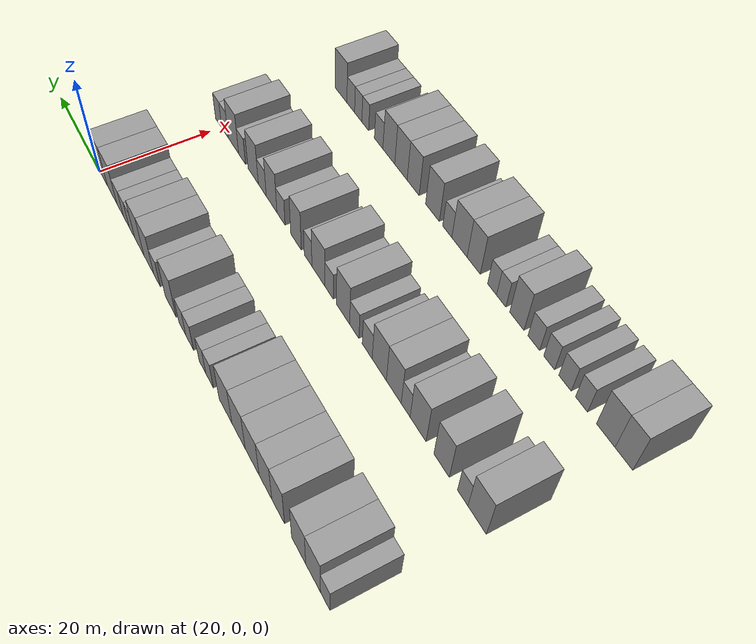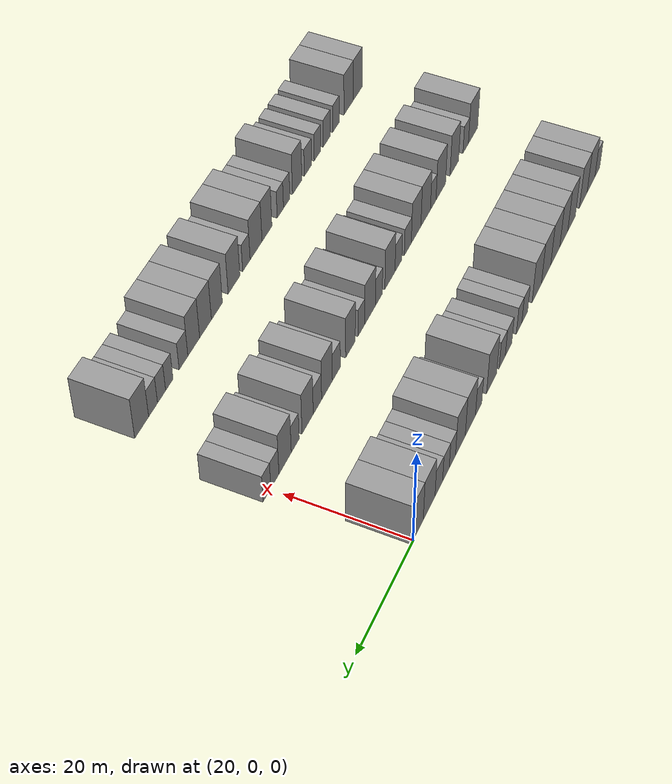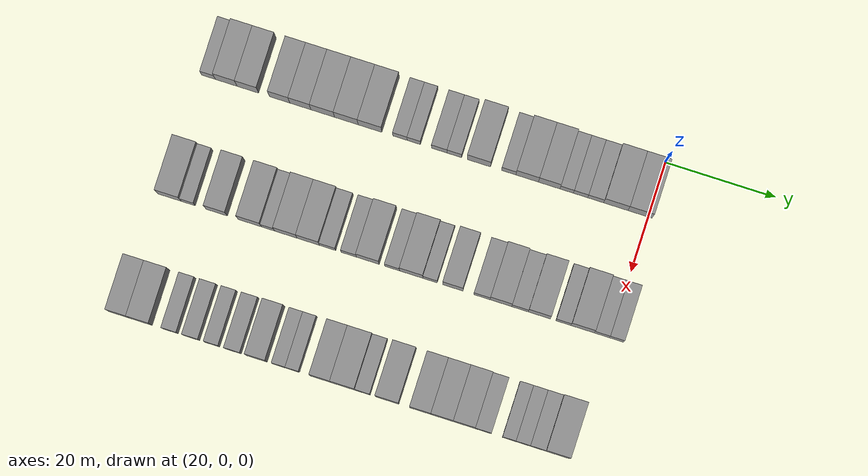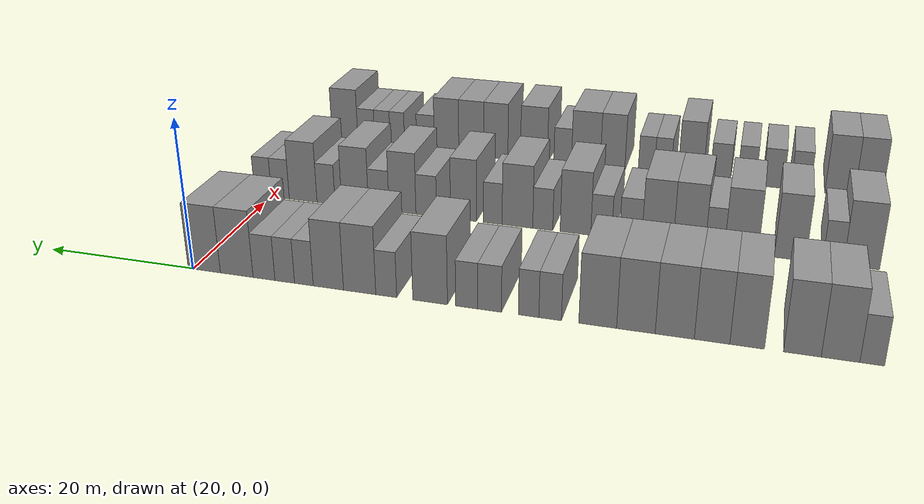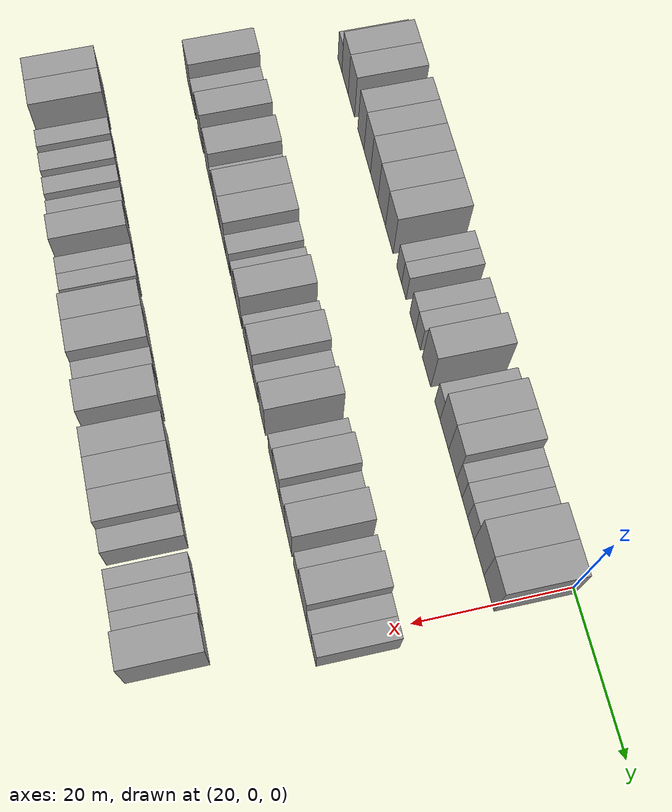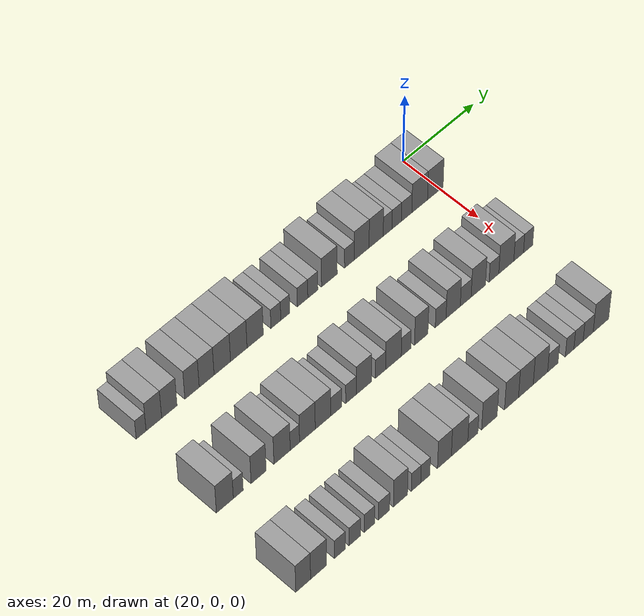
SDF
<sdf version="1.6">
 <world name="default">
  <model name="building_44">
   <static>1</static>
   <pose>25.0000 -80.0798 0 0.000000 0.000000 0.000000</pose>
   <link name="link">
    <pose>0 0 3.00 0 0 0</pose>
    <collision name="collision"><geometry><box><size>10.0000 2.5071 6.0000</size></box></geometry></collision>
    <visual name="visual">
     <cast_shadows>0</cast_shadows>
     <geometry><box><size>10.0000 2.5071 6.0000</size></box></geometry>
     <material>
      <script>
       <uri>model://grey_wall/materials/scripts</uri>
       <uri>model://grey_wall/materials/textures</uri>
       <name>vrc/grey_wall</name>
      </script>
     </material>
    </visual>
   </link>
  </model>
  <model name="building_45">
   <static>1</static>
   <pose>25.0000 -76.8473 0 0.000000 0.000000 0.000000</pose>
   <link name="link">
    <pose>0 0 4.50 0 0 0</pose>
    <collision name="collision"><geometry><box><size>10.0000 3.9578 9.0000</size></box></geometry></collision>
    <visual name="visual">
     <cast_shadows>0</cast_shadows>
     <geometry><box><size>10.0000 3.9578 9.0000</size></box></geometry>
     <material>
      <script>
       <uri>model://grey_wall/materials/scripts</uri>
       <uri>model://grey_wall/materials/textures</uri>
       <name>vrc/grey_wall</name>
      </script>
     </material>
    </visual>
   </link>
  </model>
  <model name="building_46">
   <static>1</static>
   <pose>25.0000 -72.9065 0 0.000000 0.000000 0.000000</pose>
   <link name="link">
    <pose>0 0 4.50 0 0 0</pose>
    <collision name="collision"><geometry><box><size>10.0000 3.9238 9.0000</size></box></geometry></collision>
    <visual name="visual">
     <cast_shadows>0</cast_shadows>
     <geometry><box><size>10.0000 3.9238 9.0000</size></box></geometry>
     <material>
      <script>
       <uri>model://grey_wall/materials/scripts</uri>
       <uri>model://grey_wall/materials/textures</uri>
       <name>vrc/grey_wall</name>
      </script>
     </material>
    </visual>
   </link>
  </model>
  <model name="building_47">
   <static>1</static>
   <pose>25.0000 -67.0962 0 0.000000 0.000000 0.000000</pose>
   <link name="link">
    <pose>0 0 4.50 0 0 0</pose>
    <collision name="collision"><geometry><box><size>10.0000 3.6969 9.0000</size></box></geometry></collision>
    <visual name="visual">
     <cast_shadows>0</cast_shadows>
     <geometry><box><size>10.0000 3.6969 9.0000</size></box></geometry>
     <material>
      <script>
       <uri>model://grey_wall/materials/scripts</uri>
       <uri>model://grey_wall/materials/textures</uri>
       <name>vrc/grey_wall</name>
      </script>
     </material>
    </visual>
   </link>
  </model>
  <model name="building_48">
   <static>1</static>
   <pose>25.0000 -63.3250 0 0.000000 0.000000 0.000000</pose>
   <link name="link">
    <pose>0 0 4.50 0 0 0</pose>
    <collision name="collision"><geometry><box><size>10.0000 3.8456 9.0000</size></box></geometry></collision>
    <visual name="visual">
     <cast_shadows>0</cast_shadows>
     <geometry><box><size>10.0000 3.8456 9.0000</size></box></geometry>
     <material>
      <script>
       <uri>model://grey_wall/materials/scripts</uri>
       <uri>model://grey_wall/materials/textures</uri>
       <name>vrc/grey_wall</name>
      </script>
     </material>
    </visual>
   </link>
  </model>
  <model name="building_49">
   <static>1</static>
   <pose>25.0000 -59.2501 0 0.000000 0.000000 0.000000</pose>
   <link name="link">
    <pose>0 0 4.50 0 0 0</pose>
    <collision name="collision"><geometry><box><size>10.0000 4.3040 9.0000</size></box></geometry></collision>
    <visual name="visual">
     <cast_shadows>0</cast_shadows>
     <geometry><box><size>10.0000 4.3040 9.0000</size></box></geometry>
     <material>
      <script>
       <uri>model://grey_wall/materials/scripts</uri>
       <uri>model://grey_wall/materials/textures</uri>
       <name>vrc/grey_wall</name>
      </script>
     </material>
    </visual>
   </link>
  </model>
  <model name="building_50">
   <static>1</static>
   <pose>25.0000 -54.9398 0 0.000000 0.000000 0.000000</pose>
   <link name="link">
    <pose>0 0 4.50 0 0 0</pose>
    <collision name="collision"><geometry><box><size>10.0000 4.3167 9.0000</size></box></geometry></collision>
    <visual name="visual">
     <cast_shadows>0</cast_shadows>
     <geometry><box><size>10.0000 4.3167 9.0000</size></box></geometry>
     <material>
      <script>
       <uri>model://grey_wall/materials/scripts</uri>
       <uri>model://grey_wall/materials/textures</uri>
       <name>vrc/grey_wall</name>
      </script>
     </material>
    </visual>
   </link>
  </model>
  <model name="building_51">
   <static>1</static>
   <pose>25.0000 -50.6301 0 0.000000 0.000000 0.000000</pose>
   <link name="link">
    <pose>0 0 4.50 0 0 0</pose>
    <collision name="collision"><geometry><box><size>10.0000 4.3026 9.0000</size></box></geometry></collision>
    <visual name="visual">
     <cast_shadows>0</cast_shadows>
     <geometry><box><size>10.0000 4.3026 9.0000</size></box></geometry>
     <material>
      <script>
       <uri>model://grey_wall/materials/scripts</uri>
       <uri>model://grey_wall/materials/textures</uri>
       <name>vrc/grey_wall</name>
      </script>
     </material>
    </visual>
   </link>
  </model>
  <model name="building_52">
   <static>1</static>
   <pose>25.0000 -45.1680 0 0.000000 0.000000 0.000000</pose>
   <link name="link">
    <pose>0 0 3.00 0 0 0</pose>
    <collision name="collision"><geometry><box><size>10.0000 2.6216 6.0000</size></box></geometry></collision>
    <visual name="visual">
     <cast_shadows>0</cast_shadows>
     <geometry><box><size>10.0000 2.6216 6.0000</size></box></geometry>
     <material>
      <script>
       <uri>model://grey_wall/materials/scripts</uri>
       <uri>model://grey_wall/materials/textures</uri>
       <name>vrc/grey_wall</name>
      </script>
     </material>
    </visual>
   </link>
  </model>
  <model name="building_53">
   <static>1</static>
   <pose>25.0000 -42.6531 0 0.000000 0.000000 0.000000</pose>
   <link name="link">
    <pose>0 0 3.00 0 0 0</pose>
    <collision name="collision"><geometry><box><size>10.0000 2.4082 6.0000</size></box></geometry></collision>
    <visual name="visual">
     <cast_shadows>0</cast_shadows>
     <geometry><box><size>10.0000 2.4082 6.0000</size></box></geometry>
     <material>
      <script>
       <uri>model://grey_wall/materials/scripts</uri>
       <uri>model://grey_wall/materials/textures</uri>
       <name>vrc/grey_wall</name>
      </script>
     </material>
    </visual>
   </link>
  </model>
  <model name="building_54">
   <static>1</static>
   <pose>25.0000 -38.0343 0 0.000000 0.000000 0.000000</pose>
   <link name="link">
    <pose>0 0 3.00 0 0 0</pose>
    <collision name="collision"><geometry><box><size>10.0000 2.8293 6.0000</size></box></geometry></collision>
    <visual name="visual">
     <cast_shadows>0</cast_shadows>
     <geometry><box><size>10.0000 2.8293 6.0000</size></box></geometry>
     <material>
      <script>
       <uri>model://grey_wall/materials/scripts</uri>
       <uri>model://grey_wall/materials/textures</uri>
       <name>vrc/grey_wall</name>
      </script>
     </material>
    </visual>
   </link>
  </model>
  <model name="building_55">
   <static>1</static>
   <pose>25.0000 -35.2794 0 0.000000 0.000000 0.000000</pose>
   <link name="link">
    <pose>0 0 3.00 0 0 0</pose>
    <collision name="collision"><geometry><box><size>10.0000 2.6806 6.0000</size></box></geometry></collision>
    <visual name="visual">
     <cast_shadows>0</cast_shadows>
     <geometry><box><size>10.0000 2.6806 6.0000</size></box></geometry>
     <material>
      <script>
       <uri>model://grey_wall/materials/scripts</uri>
       <uri>model://grey_wall/materials/textures</uri>
       <name>vrc/grey_wall</name>
      </script>
     </material>
    </visual>
   </link>
  </model>
  <model name="building_56">
   <static>1</static>
   <pose>25.0000 -30.8099 0 0.000000 0.000000 0.000000</pose>
   <link name="link">
    <pose>0 0 4.50 0 0 0</pose>
    <collision name="collision"><geometry><box><size>10.0000 4.2584 9.0000</size></box></geometry></collision>
    <visual name="visual">
     <cast_shadows>0</cast_shadows>
     <geometry><box><size>10.0000 4.2584 9.0000</size></box></geometry>
     <material>
      <script>
       <uri>model://grey_wall/materials/scripts</uri>
       <uri>model://grey_wall/materials/textures</uri>
       <name>vrc/grey_wall</name>
      </script>
     </material>
    </visual>
   </link>
  </model>
  <model name="building_57">
   <static>1</static>
   <pose>25.0000 -25.3674 0 0.000000 0.000000 0.000000</pose>
   <link name="link">
    <pose>0 0 3.00 0 0 0</pose>
    <collision name="collision"><geometry><box><size>10.0000 2.6267 6.0000</size></box></geometry></collision>
    <visual name="visual">
     <cast_shadows>0</cast_shadows>
     <geometry><box><size>10.0000 2.6267 6.0000</size></box></geometry>
     <material>
      <script>
       <uri>model://grey_wall/materials/scripts</uri>
       <uri>model://grey_wall/materials/textures</uri>
       <name>vrc/grey_wall</name>
      </script>
     </material>
    </visual>
   </link>
  </model>
  <model name="building_58">
   <static>1</static>
   <pose>25.0000 -22.0043 0 0.000000 0.000000 0.000000</pose>
   <link name="link">
    <pose>0 0 4.50 0 0 0</pose>
    <collision name="collision"><geometry><box><size>10.0000 4.0994 9.0000</size></box></geometry></collision>
    <visual name="visual">
     <cast_shadows>0</cast_shadows>
     <geometry><box><size>10.0000 4.0994 9.0000</size></box></geometry>
     <material>
      <script>
       <uri>model://grey_wall/materials/scripts</uri>
       <uri>model://grey_wall/materials/textures</uri>
       <name>vrc/grey_wall</name>
      </script>
     </material>
    </visual>
   </link>
  </model>
  <model name="building_59">
   <static>1</static>
   <pose>25.0000 -18.0074 0 0.000000 0.000000 0.000000</pose>
   <link name="link">
    <pose>0 0 4.50 0 0 0</pose>
    <collision name="collision"><geometry><box><size>10.0000 3.8946 9.0000</size></box></geometry></collision>
    <visual name="visual">
     <cast_shadows>0</cast_shadows>
     <geometry><box><size>10.0000 3.8946 9.0000</size></box></geometry>
     <material>
      <script>
       <uri>model://grey_wall/materials/scripts</uri>
       <uri>model://grey_wall/materials/textures</uri>
       <name>vrc/grey_wall</name>
      </script>
     </material>
    </visual>
   </link>
  </model>
  <model name="building_60">
   <static>1</static>
   <pose>25.0000 -14.8395 0 0.000000 0.000000 0.000000</pose>
   <link name="link">
    <pose>0 0 3.00 0 0 0</pose>
    <collision name="collision"><geometry><box><size>10.0000 2.4411 6.0000</size></box></geometry></collision>
    <visual name="visual">
     <cast_shadows>0</cast_shadows>
     <geometry><box><size>10.0000 2.4411 6.0000</size></box></geometry>
     <material>
      <script>
       <uri>model://grey_wall/materials/scripts</uri>
       <uri>model://grey_wall/materials/textures</uri>
       <name>vrc/grey_wall</name>
      </script>
     </material>
    </visual>
   </link>
  </model>
  <model name="building_61">
   <static>1</static>
   <pose>25.0000 -12.3281 0 0.000000 0.000000 0.000000</pose>
   <link name="link">
    <pose>0 0 3.00 0 0 0</pose>
    <collision name="collision"><geometry><box><size>10.0000 2.5816 6.0000</size></box></geometry></collision>
    <visual name="visual">
     <cast_shadows>0</cast_shadows>
     <geometry><box><size>10.0000 2.5816 6.0000</size></box></geometry>
     <material>
      <script>
       <uri>model://grey_wall/materials/scripts</uri>
       <uri>model://grey_wall/materials/textures</uri>
       <name>vrc/grey_wall</name>
      </script>
     </material>
    </visual>
   </link>
  </model>
  <model name="building_62">
   <static>1</static>
   <pose>25.0000 -9.5832 0 0.000000 0.000000 0.000000</pose>
   <link name="link">
    <pose>0 0 3.00 0 0 0</pose>
    <collision name="collision"><geometry><box><size>10.0000 2.9084 6.0000</size></box></geometry></collision>
    <visual name="visual">
     <cast_shadows>0</cast_shadows>
     <geometry><box><size>10.0000 2.9084 6.0000</size></box></geometry>
     <material>
      <script>
       <uri>model://grey_wall/materials/scripts</uri>
       <uri>model://grey_wall/materials/textures</uri>
       <name>vrc/grey_wall</name>
      </script>
     </material>
    </visual>
   </link>
  </model>
  <model name="building_63">
   <static>1</static>
   <pose>25.0000 -5.9240 0 0.000000 0.000000 0.000000</pose>
   <link name="link">
    <pose>0 0 4.50 0 0 0</pose>
    <collision name="collision"><geometry><box><size>10.0000 4.4099 9.0000</size></box></geometry></collision>
    <visual name="visual">
     <cast_shadows>0</cast_shadows>
     <geometry><box><size>10.0000 4.4099 9.0000</size></box></geometry>
     <material>
      <script>
       <uri>model://grey_wall/materials/scripts</uri>
       <uri>model://grey_wall/materials/textures</uri>
       <name>vrc/grey_wall</name>
      </script>
     </material>
    </visual>
   </link>
  </model>
  <model name="building_64">
   <static>1</static>
   <pose>25.0000 -1.5199 0 0.000000 0.000000 0.000000</pose>
   <link name="link">
    <pose>0 0 4.50 0 0 0</pose>
    <collision name="collision"><geometry><box><size>10.0000 4.3984 9.0000</size></box></geometry></collision>
    <visual name="visual">
     <cast_shadows>0</cast_shadows>
     <geometry><box><size>10.0000 4.3984 9.0000</size></box></geometry>
     <material>
      <script>
       <uri>model://grey_wall/materials/scripts</uri>
       <uri>model://grey_wall/materials/textures</uri>
       <name>vrc/grey_wall</name>
      </script>
     </material>
    </visual>
   </link>
  </model>
  <model name="building_165">
   <static>1</static>
   <pose>47.0000 -80.0317 0 0.000000 0.000000 0.000000</pose>
   <link name="link">
    <pose>0 0 4.50 0 0 0</pose>
    <collision name="collision"><geometry><box><size>10.0000 4.2864 9.0000</size></box></geometry></collision>
    <visual name="visual">
     <cast_shadows>0</cast_shadows>
     <geometry><box><size>10.0000 4.2864 9.0000</size></box></geometry>
     <material>
      <script>
       <uri>model://grey_wall/materials/scripts</uri>
       <uri>model://grey_wall/materials/textures</uri>
       <name>vrc/grey_wall</name>
      </script>
     </material>
    </visual>
   </link>
  </model>
  <model name="building_166">
   <static>1</static>
   <pose>47.0000 -76.6315 0 0.000000 0.000000 0.000000</pose>
   <link name="link">
    <pose>0 0 3.00 0 0 0</pose>
    <collision name="collision"><geometry><box><size>10.0000 2.5140 6.0000</size></box></geometry></collision>
    <visual name="visual">
     <cast_shadows>0</cast_shadows>
     <geometry><box><size>10.0000 2.5140 6.0000</size></box></geometry>
     <material>
      <script>
       <uri>model://grey_wall/materials/scripts</uri>
       <uri>model://grey_wall/materials/textures</uri>
       <name>vrc/grey_wall</name>
      </script>
     </material>
    </visual>
   </link>
  </model>
  <model name="building_167">
   <static>1</static>
   <pose>47.0000 -71.4443 0 0.000000 0.000000 0.000000</pose>
   <link name="link">
    <pose>0 0 4.50 0 0 0</pose>
    <collision name="collision"><geometry><box><size>10.0000 3.8606 9.0000</size></box></geometry></collision>
    <visual name="visual">
     <cast_shadows>0</cast_shadows>
     <geometry><box><size>10.0000 3.8606 9.0000</size></box></geometry>
     <material>
      <script>
       <uri>model://grey_wall/materials/scripts</uri>
       <uri>model://grey_wall/materials/textures</uri>
       <name>vrc/grey_wall</name>
      </script>
     </material>
    </visual>
   </link>
  </model>
  <model name="building_168">
   <static>1</static>
   <pose>47.0000 -65.4114 0 0.000000 0.000000 0.000000</pose>
   <link name="link">
    <pose>0 0 4.50 0 0 0</pose>
    <collision name="collision"><geometry><box><size>10.0000 4.2051 9.0000</size></box></geometry></collision>
    <visual name="visual">
     <cast_shadows>0</cast_shadows>
     <geometry><box><size>10.0000 4.2051 9.0000</size></box></geometry>
     <material>
      <script>
       <uri>model://grey_wall/materials/scripts</uri>
       <uri>model://grey_wall/materials/textures</uri>
       <name>vrc/grey_wall</name>
      </script>
     </material>
    </visual>
   </link>
  </model>
  <model name="building_169">
   <static>1</static>
   <pose>47.0000 -62.0979 0 0.000000 0.000000 0.000000</pose>
   <link name="link">
    <pose>0 0 3.00 0 0 0</pose>
    <collision name="collision"><geometry><box><size>10.0000 2.4218 6.0000</size></box></geometry></collision>
    <visual name="visual">
     <cast_shadows>0</cast_shadows>
     <geometry><box><size>10.0000 2.4218 6.0000</size></box></geometry>
     <material>
      <script>
       <uri>model://grey_wall/materials/scripts</uri>
       <uri>model://grey_wall/materials/textures</uri>
       <name>vrc/grey_wall</name>
      </script>
     </material>
    </visual>
   </link>
  </model>
  <model name="building_170">
   <static>1</static>
   <pose>47.0000 -58.8399 0 0.000000 0.000000 0.000000</pose>
   <link name="link">
    <pose>0 0 4.50 0 0 0</pose>
    <collision name="collision"><geometry><box><size>10.0000 4.0941 9.0000</size></box></geometry></collision>
    <visual name="visual">
     <cast_shadows>0</cast_shadows>
     <geometry><box><size>10.0000 4.0941 9.0000</size></box></geometry>
     <material>
      <script>
       <uri>model://grey_wall/materials/scripts</uri>
       <uri>model://grey_wall/materials/textures</uri>
       <name>vrc/grey_wall</name>
      </script>
     </material>
    </visual>
   </link>
  </model>
  <model name="building_171">
   <static>1</static>
   <pose>47.0000 -54.7611 0 0.000000 0.000000 0.000000</pose>
   <link name="link">
    <pose>0 0 4.50 0 0 0</pose>
    <collision name="collision"><geometry><box><size>10.0000 4.0636 9.0000</size></box></geometry></collision>
    <visual name="visual">
     <cast_shadows>0</cast_shadows>
     <geometry><box><size>10.0000 4.0636 9.0000</size></box></geometry>
     <material>
      <script>
       <uri>model://grey_wall/materials/scripts</uri>
       <uri>model://grey_wall/materials/textures</uri>
       <name>vrc/grey_wall</name>
      </script>
     </material>
    </visual>
   </link>
  </model>
  <model name="building_172">
   <static>1</static>
   <pose>47.0000 -51.2678 0 0.000000 0.000000 0.000000</pose>
   <link name="link">
    <pose>0 0 3.00 0 0 0</pose>
    <collision name="collision"><geometry><box><size>10.0000 2.9230 6.0000</size></box></geometry></collision>
    <visual name="visual">
     <cast_shadows>0</cast_shadows>
     <geometry><box><size>10.0000 2.9230 6.0000</size></box></geometry>
     <material>
      <script>
       <uri>model://grey_wall/materials/scripts</uri>
       <uri>model://grey_wall/materials/textures</uri>
       <name>vrc/grey_wall</name>
      </script>
     </material>
    </visual>
   </link>
  </model>
  <model name="building_173">
   <static>1</static>
   <pose>47.0000 -47.4071 0 0.000000 0.000000 0.000000</pose>
   <link name="link">
    <pose>0 0 3.00 0 0 0</pose>
    <collision name="collision"><geometry><box><size>10.0000 2.7984 6.0000</size></box></geometry></collision>
    <visual name="visual">
     <cast_shadows>0</cast_shadows>
     <geometry><box><size>10.0000 2.7984 6.0000</size></box></geometry>
     <material>
      <script>
       <uri>model://grey_wall/materials/scripts</uri>
       <uri>model://grey_wall/materials/textures</uri>
       <name>vrc/grey_wall</name>
      </script>
     </material>
    </visual>
   </link>
  </model>
  <model name="building_174">
   <static>1</static>
   <pose>47.0000 -43.9524 0 0.000000 0.000000 0.000000</pose>
   <link name="link">
    <pose>0 0 4.50 0 0 0</pose>
    <collision name="collision"><geometry><box><size>10.0000 4.1109 9.0000</size></box></geometry></collision>
    <visual name="visual">
     <cast_shadows>0</cast_shadows>
     <geometry><box><size>10.0000 4.1109 9.0000</size></box></geometry>
     <material>
      <script>
       <uri>model://grey_wall/materials/scripts</uri>
       <uri>model://grey_wall/materials/textures</uri>
       <name>vrc/grey_wall</name>
      </script>
     </material>
    </visual>
   </link>
  </model>
  <model name="building_175">
   <static>1</static>
   <pose>47.0000 -39.5372 0 0.000000 0.000000 0.000000</pose>
   <link name="link">
    <pose>0 0 3.00 0 0 0</pose>
    <collision name="collision"><geometry><box><size>10.0000 2.7194 6.0000</size></box></geometry></collision>
    <visual name="visual">
     <cast_shadows>0</cast_shadows>
     <geometry><box><size>10.0000 2.7194 6.0000</size></box></geometry>
     <material>
      <script>
       <uri>model://grey_wall/materials/scripts</uri>
       <uri>model://grey_wall/materials/textures</uri>
       <name>vrc/grey_wall</name>
      </script>
     </material>
    </visual>
   </link>
  </model>
  <model name="building_176">
   <static>1</static>
   <pose>47.0000 -36.0661 0 0.000000 0.000000 0.000000</pose>
   <link name="link">
    <pose>0 0 4.50 0 0 0</pose>
    <collision name="collision"><geometry><box><size>10.0000 4.2229 9.0000</size></box></geometry></collision>
    <visual name="visual">
     <cast_shadows>0</cast_shadows>
     <geometry><box><size>10.0000 4.2229 9.0000</size></box></geometry>
     <material>
      <script>
       <uri>model://grey_wall/materials/scripts</uri>
       <uri>model://grey_wall/materials/textures</uri>
       <name>vrc/grey_wall</name>
      </script>
     </material>
    </visual>
   </link>
  </model>
  <model name="building_177">
   <static>1</static>
   <pose>47.0000 -32.6575 0 0.000000 0.000000 0.000000</pose>
   <link name="link">
    <pose>0 0 3.00 0 0 0</pose>
    <collision name="collision"><geometry><box><size>10.0000 2.5941 6.0000</size></box></geometry></collision>
    <visual name="visual">
     <cast_shadows>0</cast_shadows>
     <geometry><box><size>10.0000 2.5941 6.0000</size></box></geometry>
     <material>
      <script>
       <uri>model://grey_wall/materials/scripts</uri>
       <uri>model://grey_wall/materials/textures</uri>
       <name>vrc/grey_wall</name>
      </script>
     </material>
    </visual>
   </link>
  </model>
  <model name="building_178">
   <static>1</static>
   <pose>47.0000 -28.5344 0 0.000000 0.000000 0.000000</pose>
   <link name="link">
    <pose>0 0 4.50 0 0 0</pose>
    <collision name="collision"><geometry><box><size>10.0000 3.6521 9.0000</size></box></geometry></collision>
    <visual name="visual">
     <cast_shadows>0</cast_shadows>
     <geometry><box><size>10.0000 3.6521 9.0000</size></box></geometry>
     <material>
      <script>
       <uri>model://grey_wall/materials/scripts</uri>
       <uri>model://grey_wall/materials/textures</uri>
       <name>vrc/grey_wall</name>
      </script>
     </material>
    </visual>
   </link>
  </model>
  <model name="building_179">
   <static>1</static>
   <pose>47.0000 -23.2315 0 0.000000 0.000000 0.000000</pose>
   <link name="link">
    <pose>0 0 3.00 0 0 0</pose>
    <collision name="collision"><geometry><box><size>10.0000 2.9537 6.0000</size></box></geometry></collision>
    <visual name="visual">
     <cast_shadows>0</cast_shadows>
     <geometry><box><size>10.0000 2.9537 6.0000</size></box></geometry>
     <material>
      <script>
       <uri>model://grey_wall/materials/scripts</uri>
       <uri>model://grey_wall/materials/textures</uri>
       <name>vrc/grey_wall</name>
      </script>
     </material>
    </visual>
   </link>
  </model>
  <model name="building_180">
   <static>1</static>
   <pose>47.0000 -19.7923 0 0.000000 0.000000 0.000000</pose>
   <link name="link">
    <pose>0 0 4.50 0 0 0</pose>
    <collision name="collision"><geometry><box><size>10.0000 3.9248 9.0000</size></box></geometry></collision>
    <visual name="visual">
     <cast_shadows>0</cast_shadows>
     <geometry><box><size>10.0000 3.9248 9.0000</size></box></geometry>
     <material>
      <script>
       <uri>model://grey_wall/materials/scripts</uri>
       <uri>model://grey_wall/materials/textures</uri>
       <name>vrc/grey_wall</name>
      </script>
     </material>
    </visual>
   </link>
  </model>
  <model name="building_181">
   <static>1</static>
   <pose>47.0000 -16.3320 0 0.000000 0.000000 0.000000</pose>
   <link name="link">
    <pose>0 0 3.00 0 0 0</pose>
    <collision name="collision"><geometry><box><size>10.0000 2.9959 6.0000</size></box></geometry></collision>
    <visual name="visual">
     <cast_shadows>0</cast_shadows>
     <geometry><box><size>10.0000 2.9959 6.0000</size></box></geometry>
     <material>
      <script>
       <uri>model://grey_wall/materials/scripts</uri>
       <uri>model://grey_wall/materials/textures</uri>
       <name>vrc/grey_wall</name>
      </script>
     </material>
    </visual>
   </link>
  </model>
  <model name="building_182">
   <static>1</static>
   <pose>47.0000 -12.8407 0 0.000000 0.000000 0.000000</pose>
   <link name="link">
    <pose>0 0 4.50 0 0 0</pose>
    <collision name="collision"><geometry><box><size>10.0000 3.9867 9.0000</size></box></geometry></collision>
    <visual name="visual">
     <cast_shadows>0</cast_shadows>
     <geometry><box><size>10.0000 3.9867 9.0000</size></box></geometry>
     <material>
      <script>
       <uri>model://grey_wall/materials/scripts</uri>
       <uri>model://grey_wall/materials/textures</uri>
       <name>vrc/grey_wall</name>
      </script>
     </material>
    </visual>
   </link>
  </model>
  <model name="building_183">
   <static>1</static>
   <pose>47.0000 -8.4861 0 0.000000 0.000000 0.000000</pose>
   <link name="link">
    <pose>0 0 3.00 0 0 0</pose>
    <collision name="collision"><geometry><box><size>10.0000 2.7225 6.0000</size></box></geometry></collision>
    <visual name="visual">
     <cast_shadows>0</cast_shadows>
     <geometry><box><size>10.0000 2.7225 6.0000</size></box></geometry>
     <material>
      <script>
       <uri>model://grey_wall/materials/scripts</uri>
       <uri>model://grey_wall/materials/textures</uri>
       <name>vrc/grey_wall</name>
      </script>
     </material>
    </visual>
   </link>
  </model>
  <model name="building_184">
   <static>1</static>
   <pose>47.0000 -5.0149 0 0.000000 0.000000 0.000000</pose>
   <link name="link">
    <pose>0 0 4.50 0 0 0</pose>
    <collision name="collision"><geometry><box><size>10.0000 4.2199 9.0000</size></box></geometry></collision>
    <visual name="visual">
     <cast_shadows>0</cast_shadows>
     <geometry><box><size>10.0000 4.2199 9.0000</size></box></geometry>
     <material>
      <script>
       <uri>model://grey_wall/materials/scripts</uri>
       <uri>model://grey_wall/materials/textures</uri>
       <name>vrc/grey_wall</name>
      </script>
     </material>
    </visual>
   </link>
  </model>
  <model name="building_185">
   <static>1</static>
   <pose>47.0000 -1.5388 0 0.000000 0.000000 0.000000</pose>
   <link name="link">
    <pose>0 0 3.00 0 0 0</pose>
    <collision name="collision"><geometry><box><size>10.0000 2.7323 6.0000</size></box></geometry></collision>
    <visual name="visual">
     <cast_shadows>0</cast_shadows>
     <geometry><box><size>10.0000 2.7323 6.0000</size></box></geometry>
     <material>
      <script>
       <uri>model://grey_wall/materials/scripts</uri>
       <uri>model://grey_wall/materials/textures</uri>
       <name>vrc/grey_wall</name>
      </script>
     </material>
    </visual>
   </link>
  </model>
  <model name="building_186">
   <static>1</static>
   <pose>47.0000 1.1306 0 0.000000 0.000000 0.000000</pose>
   <link name="link">
    <pose>0 0 3.00 0 0 0</pose>
    <collision name="collision"><geometry><box><size>10.0000 2.6066 6.0000</size></box></geometry></collision>
    <visual name="visual">
     <cast_shadows>0</cast_shadows>
     <geometry><box><size>10.0000 2.6066 6.0000</size></box></geometry>
     <material>
      <script>
       <uri>model://grey_wall/materials/scripts</uri>
       <uri>model://grey_wall/materials/textures</uri>
       <name>vrc/grey_wall</name>
      </script>
     </material>
    </visual>
   </link>
  </model>
  <model name="building_299">
   <static>1</static>
   <pose>69.0000 -82.0124 0 0.000000 0.000000 0.000000</pose>
   <link name="link">
    <pose>0 0 4.50 0 0 0</pose>
    <collision name="collision"><geometry><box><size>10.0000 3.7405 9.0000</size></box></geometry></collision>
    <visual name="visual">
     <cast_shadows>0</cast_shadows>
     <geometry><box><size>10.0000 3.7405 9.0000</size></box></geometry>
     <material>
      <script>
       <uri>model://grey_wall/materials/scripts</uri>
       <uri>model://grey_wall/materials/textures</uri>
       <name>vrc/grey_wall</name>
      </script>
     </material>
    </visual>
   </link>
  </model>
  <model name="building_300">
   <static>1</static>
   <pose>69.0000 -78.1093 0 0.000000 0.000000 0.000000</pose>
   <link name="link">
    <pose>0 0 4.50 0 0 0</pose>
    <collision name="collision"><geometry><box><size>10.0000 4.0656 9.0000</size></box></geometry></collision>
    <visual name="visual">
     <cast_shadows>0</cast_shadows>
     <geometry><box><size>10.0000 4.0656 9.0000</size></box></geometry>
     <material>
      <script>
       <uri>model://grey_wall/materials/scripts</uri>
       <uri>model://grey_wall/materials/textures</uri>
       <name>vrc/grey_wall</name>
      </script>
     </material>
    </visual>
   </link>
  </model>
  <model name="building_301">
   <static>1</static>
   <pose>69.0000 -72.7084 0 0.000000 0.000000 0.000000</pose>
   <link name="link">
    <pose>0 0 3.00 0 0 0</pose>
    <collision name="collision"><geometry><box><size>10.0000 2.7364 6.0000</size></box></geometry></collision>
    <visual name="visual">
     <cast_shadows>0</cast_shadows>
     <geometry><box><size>10.0000 2.7364 6.0000</size></box></geometry>
     <material>
      <script>
       <uri>model://grey_wall/materials/scripts</uri>
       <uri>model://grey_wall/materials/textures</uri>
       <name>vrc/grey_wall</name>
      </script>
     </material>
    </visual>
   </link>
  </model>
  <model name="building_302">
   <static>1</static>
   <pose>69.0000 -68.8853 0 0.000000 0.000000 0.000000</pose>
   <link name="link">
    <pose>0 0 3.00 0 0 0</pose>
    <collision name="collision"><geometry><box><size>10.0000 2.9098 6.0000</size></box></geometry></collision>
    <visual name="visual">
     <cast_shadows>0</cast_shadows>
     <geometry><box><size>10.0000 2.9098 6.0000</size></box></geometry>
     <material>
      <script>
       <uri>model://grey_wall/materials/scripts</uri>
       <uri>model://grey_wall/materials/textures</uri>
       <name>vrc/grey_wall</name>
      </script>
     </material>
    </visual>
   </link>
  </model>
  <model name="building_303">
   <static>1</static>
   <pose>69.0000 -65.1115 0 0.000000 0.000000 0.000000</pose>
   <link name="link">
    <pose>0 0 3.00 0 0 0</pose>
    <collision name="collision"><geometry><box><size>10.0000 2.6379 6.0000</size></box></geometry></collision>
    <visual name="visual">
     <cast_shadows>0</cast_shadows>
     <geometry><box><size>10.0000 2.6379 6.0000</size></box></geometry>
     <material>
      <script>
       <uri>model://grey_wall/materials/scripts</uri>
       <uri>model://grey_wall/materials/textures</uri>
       <name>vrc/grey_wall</name>
      </script>
     </material>
    </visual>
   </link>
  </model>
  <model name="building_304">
   <static>1</static>
   <pose>69.0000 -61.3342 0 0.000000 0.000000 0.000000</pose>
   <link name="link">
    <pose>0 0 3.00 0 0 0</pose>
    <collision name="collision"><geometry><box><size>10.0000 2.9167 6.0000</size></box></geometry></collision>
    <visual name="visual">
     <cast_shadows>0</cast_shadows>
     <geometry><box><size>10.0000 2.9167 6.0000</size></box></geometry>
     <material>
      <script>
       <uri>model://grey_wall/materials/scripts</uri>
       <uri>model://grey_wall/materials/textures</uri>
       <name>vrc/grey_wall</name>
      </script>
     </material>
    </visual>
   </link>
  </model>
  <model name="building_305">
   <static>1</static>
   <pose>69.0000 -57.0309 0 0.000000 0.000000 0.000000</pose>
   <link name="link">
    <pose>0 0 4.50 0 0 0</pose>
    <collision name="collision"><geometry><box><size>10.0000 3.6900 9.0000</size></box></geometry></collision>
    <visual name="visual">
     <cast_shadows>0</cast_shadows>
     <geometry><box><size>10.0000 3.6900 9.0000</size></box></geometry>
     <material>
      <script>
       <uri>model://grey_wall/materials/scripts</uri>
       <uri>model://grey_wall/materials/textures</uri>
       <name>vrc/grey_wall</name>
      </script>
     </material>
    </visual>
   </link>
  </model>
  <model name="building_306">
   <static>1</static>
   <pose>69.0000 -52.9541 0 0.000000 0.000000 0.000000</pose>
   <link name="link">
    <pose>0 0 3.00 0 0 0</pose>
    <collision name="collision"><geometry><box><size>10.0000 2.4636 6.0000</size></box></geometry></collision>
    <visual name="visual">
     <cast_shadows>0</cast_shadows>
     <geometry><box><size>10.0000 2.4636 6.0000</size></box></geometry>
     <material>
      <script>
       <uri>model://grey_wall/materials/scripts</uri>
       <uri>model://grey_wall/materials/textures</uri>
       <name>vrc/grey_wall</name>
      </script>
     </material>
    </visual>
   </link>
  </model>
  <model name="building_307">
   <static>1</static>
   <pose>69.0000 -50.5129 0 0.000000 0.000000 0.000000</pose>
   <link name="link">
    <pose>0 0 3.00 0 0 0</pose>
    <collision name="collision"><geometry><box><size>10.0000 2.4188 6.0000</size></box></geometry></collision>
    <visual name="visual">
     <cast_shadows>0</cast_shadows>
     <geometry><box><size>10.0000 2.4188 6.0000</size></box></geometry>
     <material>
      <script>
       <uri>model://grey_wall/materials/scripts</uri>
       <uri>model://grey_wall/materials/textures</uri>
       <name>vrc/grey_wall</name>
      </script>
     </material>
    </visual>
   </link>
  </model>
  <model name="building_308">
   <static>1</static>
   <pose>69.0000 -45.4517 0 0.000000 0.000000 0.000000</pose>
   <link name="link">
    <pose>0 0 4.50 0 0 0</pose>
    <collision name="collision"><geometry><box><size>10.0000 3.7036 9.0000</size></box></geometry></collision>
    <visual name="visual">
     <cast_shadows>0</cast_shadows>
     <geometry><box><size>10.0000 3.7036 9.0000</size></box></geometry>
     <material>
      <script>
       <uri>model://grey_wall/materials/scripts</uri>
       <uri>model://grey_wall/materials/textures</uri>
       <name>vrc/grey_wall</name>
      </script>
     </material>
    </visual>
   </link>
  </model>
  <model name="building_309">
   <static>1</static>
   <pose>69.0000 -41.3978 0 0.000000 0.000000 0.000000</pose>
   <link name="link">
    <pose>0 0 4.50 0 0 0</pose>
    <collision name="collision"><geometry><box><size>10.0000 4.4041 9.0000</size></box></geometry></collision>
    <visual name="visual">
     <cast_shadows>0</cast_shadows>
     <geometry><box><size>10.0000 4.4041 9.0000</size></box></geometry>
     <material>
      <script>
       <uri>model://grey_wall/materials/scripts</uri>
       <uri>model://grey_wall/materials/textures</uri>
       <name>vrc/grey_wall</name>
      </script>
     </material>
    </visual>
   </link>
  </model>
  <model name="building_310">
   <static>1</static>
   <pose>69.0000 -37.8427 0 0.000000 0.000000 0.000000</pose>
   <link name="link">
    <pose>0 0 3.00 0 0 0</pose>
    <collision name="collision"><geometry><box><size>10.0000 2.7062 6.0000</size></box></geometry></collision>
    <visual name="visual">
     <cast_shadows>0</cast_shadows>
     <geometry><box><size>10.0000 2.7062 6.0000</size></box></geometry>
     <material>
      <script>
       <uri>model://grey_wall/materials/scripts</uri>
       <uri>model://grey_wall/materials/textures</uri>
       <name>vrc/grey_wall</name>
      </script>
     </material>
    </visual>
   </link>
  </model>
  <model name="building_311">
   <static>1</static>
   <pose>69.0000 -33.3909 0 0.000000 0.000000 0.000000</pose>
   <link name="link">
    <pose>0 0 4.50 0 0 0</pose>
    <collision name="collision"><geometry><box><size>10.0000 4.1974 9.0000</size></box></geometry></collision>
    <visual name="visual">
     <cast_shadows>0</cast_shadows>
     <geometry><box><size>10.0000 4.1974 9.0000</size></box></geometry>
     <material>
      <script>
       <uri>model://grey_wall/materials/scripts</uri>
       <uri>model://grey_wall/materials/textures</uri>
       <name>vrc/grey_wall</name>
      </script>
     </material>
    </visual>
   </link>
  </model>
  <model name="building_312">
   <static>1</static>
   <pose>69.0000 -27.3816 0 0.000000 0.000000 0.000000</pose>
   <link name="link">
    <pose>0 0 4.50 0 0 0</pose>
    <collision name="collision"><geometry><box><size>10.0000 3.8213 9.0000</size></box></geometry></collision>
    <visual name="visual">
     <cast_shadows>0</cast_shadows>
     <geometry><box><size>10.0000 3.8213 9.0000</size></box></geometry>
     <material>
      <script>
       <uri>model://grey_wall/materials/scripts</uri>
       <uri>model://grey_wall/materials/textures</uri>
       <name>vrc/grey_wall</name>
      </script>
     </material>
    </visual>
   </link>
  </model>
  <model name="building_313">
   <static>1</static>
   <pose>69.0000 -23.4511 0 0.000000 0.000000 0.000000</pose>
   <link name="link">
    <pose>0 0 4.50 0 0 0</pose>
    <collision name="collision"><geometry><box><size>10.0000 4.0396 9.0000</size></box></geometry></collision>
    <visual name="visual">
     <cast_shadows>0</cast_shadows>
     <geometry><box><size>10.0000 4.0396 9.0000</size></box></geometry>
     <material>
      <script>
       <uri>model://grey_wall/materials/scripts</uri>
       <uri>model://grey_wall/materials/textures</uri>
       <name>vrc/grey_wall</name>
      </script>
     </material>
    </visual>
   </link>
  </model>
  <model name="building_314">
   <static>1</static>
   <pose>69.0000 -19.4459 0 0.000000 0.000000 0.000000</pose>
   <link name="link">
    <pose>0 0 4.50 0 0 0</pose>
    <collision name="collision"><geometry><box><size>10.0000 3.9708 9.0000</size></box></geometry></collision>
    <visual name="visual">
     <cast_shadows>0</cast_shadows>
     <geometry><box><size>10.0000 3.9708 9.0000</size></box></geometry>
     <material>
      <script>
       <uri>model://grey_wall/materials/scripts</uri>
       <uri>model://grey_wall/materials/textures</uri>
       <name>vrc/grey_wall</name>
      </script>
     </material>
    </visual>
   </link>
  </model>
  <model name="building_315">
   <static>1</static>
   <pose>69.0000 -16.0092 0 0.000000 0.000000 0.000000</pose>
   <link name="link">
    <pose>0 0 3.00 0 0 0</pose>
    <collision name="collision"><geometry><box><size>10.0000 2.9026 6.0000</size></box></geometry></collision>
    <visual name="visual">
     <cast_shadows>0</cast_shadows>
     <geometry><box><size>10.0000 2.9026 6.0000</size></box></geometry>
     <material>
      <script>
       <uri>model://grey_wall/materials/scripts</uri>
       <uri>model://grey_wall/materials/textures</uri>
       <name>vrc/grey_wall</name>
      </script>
     </material>
    </visual>
   </link>
  </model>
  <model name="building_316">
   <static>1</static>
   <pose>69.0000 -11.3567 0 0.000000 0.000000 0.000000</pose>
   <link name="link">
    <pose>0 0 3.00 0 0 0</pose>
    <collision name="collision"><geometry><box><size>10.0000 2.4023 6.0000</size></box></geometry></collision>
    <visual name="visual">
     <cast_shadows>0</cast_shadows>
     <geometry><box><size>10.0000 2.4023 6.0000</size></box></geometry>
     <material>
      <script>
       <uri>model://grey_wall/materials/scripts</uri>
       <uri>model://grey_wall/materials/textures</uri>
       <name>vrc/grey_wall</name>
      </script>
     </material>
    </visual>
   </link>
  </model>
  <model name="building_317">
   <static>1</static>
   <pose>69.0000 -8.8561 0 0.000000 0.000000 0.000000</pose>
   <link name="link">
    <pose>0 0 3.00 0 0 0</pose>
    <collision name="collision"><geometry><box><size>10.0000 2.5989 6.0000</size></box></geometry></collision>
    <visual name="visual">
     <cast_shadows>0</cast_shadows>
     <geometry><box><size>10.0000 2.5989 6.0000</size></box></geometry>
     <material>
      <script>
       <uri>model://grey_wall/materials/scripts</uri>
       <uri>model://grey_wall/materials/textures</uri>
       <name>vrc/grey_wall</name>
      </script>
     </material>
    </visual>
   </link>
  </model>
  <model name="building_318">
   <static>1</static>
   <pose>69.0000 -6.1467 0 0.000000 0.000000 0.000000</pose>
   <link name="link">
    <pose>0 0 3.00 0 0 0</pose>
    <collision name="collision"><geometry><box><size>10.0000 2.8200 6.0000</size></box></geometry></collision>
    <visual name="visual">
     <cast_shadows>0</cast_shadows>
     <geometry><box><size>10.0000 2.8200 6.0000</size></box></geometry>
     <material>
      <script>
       <uri>model://grey_wall/materials/scripts</uri>
       <uri>model://grey_wall/materials/textures</uri>
       <name>vrc/grey_wall</name>
      </script>
     </material>
    </visual>
   </link>
  </model>
  <model name="building_319">
   <static>1</static>
   <pose>69.0000 -2.5480 0 0.000000 0.000000 0.000000</pose>
   <link name="link">
    <pose>0 0 4.50 0 0 0</pose>
    <collision name="collision"><geometry><box><size>10.0000 4.3773 9.0000</size></box></geometry></collision>
    <visual name="visual">
     <cast_shadows>0</cast_shadows>
     <geometry><box><size>10.0000 4.3773 9.0000</size></box></geometry>
     <material>
      <script>
       <uri>model://grey_wall/materials/scripts</uri>
       <uri>model://grey_wall/materials/textures</uri>
       <name>vrc/grey_wall</name>
      </script>
     </material>
    </visual>
   </link>
  </model>
 </world>
</sdf>
